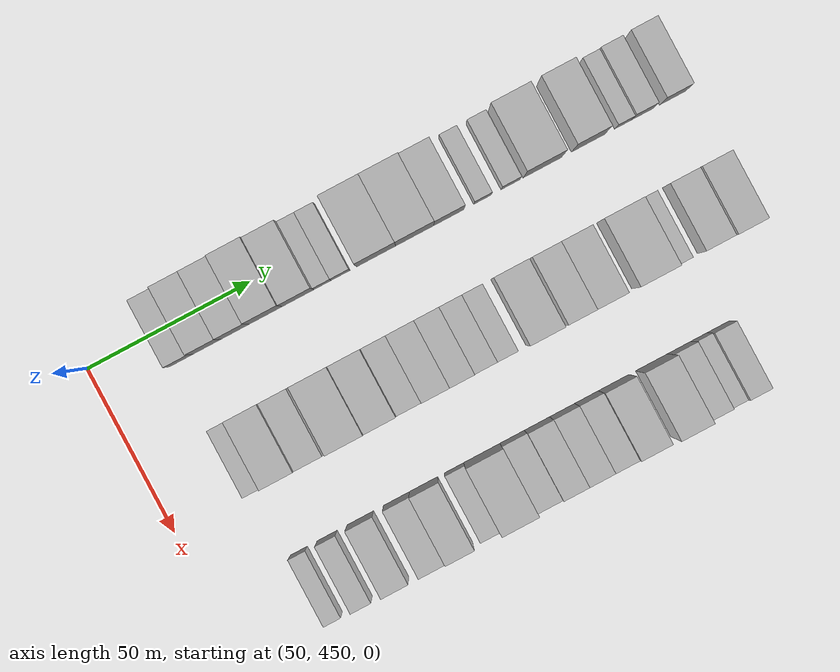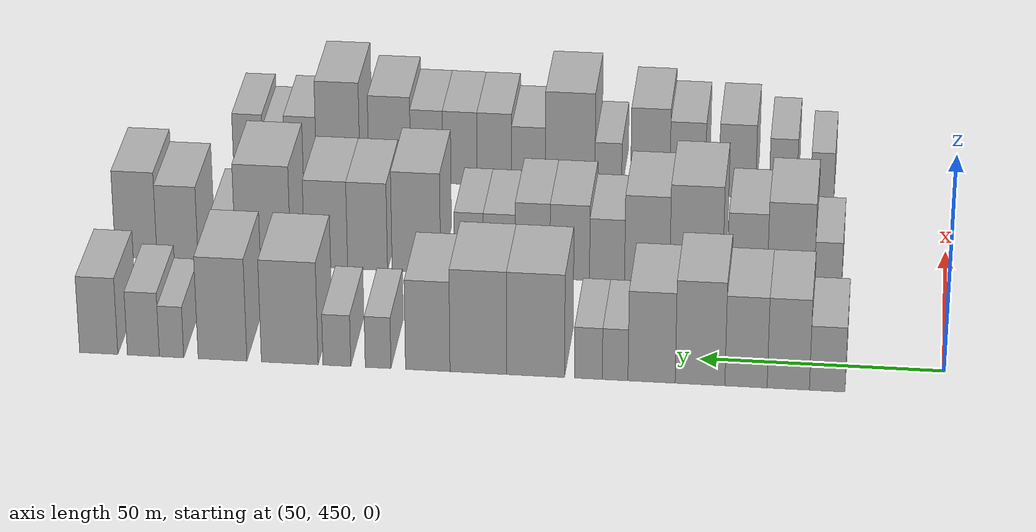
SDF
<sdf version="1.6">
 <world name="default">
  <model name="building_126">
   <static>1</static>
   <pose>50.0000 473.5926 0 0.000000 0.000000 0.000000</pose>
   <link name="link">
    <pose>0 0 7.50 0 0 0</pose>
    <collision name="collision"><geometry><box><size>20.0000 7.2097 15.0000</size></box></geometry></collision>
    <visual name="visual">
     <cast_shadows>0</cast_shadows>
     <geometry><box><size>20.0000 7.2097 15.0000</size></box></geometry>
     <material>
      <script>
       <uri>model://HANNAS_wall/materials/scripts</uri>
       <uri>model://HANNAS_wall/materials/textures</uri>
       <name>vrc/HANNAS_wall</name>
      </script>
     </material>
    </visual>
   </link>
  </model>
  <model name="building_127">
   <static>1</static>
   <pose>50.0000 481.4805 0 0.000000 0.000000 0.000000</pose>
   <link name="link">
    <pose>0 0 10.50 0 0 0</pose>
    <collision name="collision"><geometry><box><size>20.0000 8.5662 21.0000</size></box></geometry></collision>
    <visual name="visual">
     <cast_shadows>0</cast_shadows>
     <geometry><box><size>20.0000 8.5662 21.0000</size></box></geometry>
     <material>
      <script>
       <uri>model://HANNAS_wall/materials/scripts</uri>
       <uri>model://HANNAS_wall/materials/textures</uri>
       <name>vrc/HANNAS_wall</name>
      </script>
     </material>
    </visual>
   </link>
  </model>
  <model name="building_128">
   <static>1</static>
   <pose>50.0000 490.0491 0 0.000000 0.000000 0.000000</pose>
   <link name="link">
    <pose>0 0 10.50 0 0 0</pose>
    <collision name="collision"><geometry><box><size>20.0000 8.5709 21.0000</size></box></geometry></collision>
    <visual name="visual">
     <cast_shadows>0</cast_shadows>
     <geometry><box><size>20.0000 8.5709 21.0000</size></box></geometry>
     <material>
      <script>
       <uri>model://HANNAS_wall/materials/scripts</uri>
       <uri>model://HANNAS_wall/materials/textures</uri>
       <name>vrc/HANNAS_wall</name>
      </script>
     </material>
    </visual>
   </link>
  </model>
  <model name="building_129">
   <static>1</static>
   <pose>50.0000 499.3868 0 0.000000 0.000000 0.000000</pose>
   <link name="link">
    <pose>0 0 12.00 0 0 0</pose>
    <collision name="collision"><geometry><box><size>20.0000 10.1045 24.0000</size></box></geometry></collision>
    <visual name="visual">
     <cast_shadows>0</cast_shadows>
     <geometry><box><size>20.0000 10.1045 24.0000</size></box></geometry>
     <material>
      <script>
       <uri>model://HANNAS_wall/materials/scripts</uri>
       <uri>model://HANNAS_wall/materials/textures</uri>
       <name>vrc/HANNAS_wall</name>
      </script>
     </material>
    </visual>
   </link>
  </model>
  <model name="building_130">
   <static>1</static>
   <pose>50.0000 509.2486 0 0.000000 0.000000 0.000000</pose>
   <link name="link">
    <pose>0 0 10.50 0 0 0</pose>
    <collision name="collision"><geometry><box><size>20.0000 9.6193 21.0000</size></box></geometry></collision>
    <visual name="visual">
     <cast_shadows>0</cast_shadows>
     <geometry><box><size>20.0000 9.6193 21.0000</size></box></geometry>
     <material>
      <script>
       <uri>model://HANNAS_wall/materials/scripts</uri>
       <uri>model://HANNAS_wall/materials/textures</uri>
       <name>vrc/HANNAS_wall</name>
      </script>
     </material>
    </visual>
   </link>
  </model>
  <model name="building_131">
   <static>1</static>
   <pose>50.0000 516.6733 0 0.000000 0.000000 0.000000</pose>
   <link name="link">
    <pose>0 0 6.00 0 0 0</pose>
    <collision name="collision"><geometry><box><size>20.0000 5.2300 12.0000</size></box></geometry></collision>
    <visual name="visual">
     <cast_shadows>0</cast_shadows>
     <geometry><box><size>20.0000 5.2300 12.0000</size></box></geometry>
     <material>
      <script>
       <uri>model://HANNAS_wall/materials/scripts</uri>
       <uri>model://HANNAS_wall/materials/textures</uri>
       <name>vrc/HANNAS_wall</name>
      </script>
     </material>
    </visual>
   </link>
  </model>
  <model name="building_132">
   <static>1</static>
   <pose>50.0000 522.1440 0 0.000000 0.000000 0.000000</pose>
   <link name="link">
    <pose>0 0 6.00 0 0 0</pose>
    <collision name="collision"><geometry><box><size>20.0000 5.7116 12.0000</size></box></geometry></collision>
    <visual name="visual">
     <cast_shadows>0</cast_shadows>
     <geometry><box><size>20.0000 5.7116 12.0000</size></box></geometry>
     <material>
      <script>
       <uri>model://HANNAS_wall/materials/scripts</uri>
       <uri>model://HANNAS_wall/materials/textures</uri>
       <name>vrc/HANNAS_wall</name>
      </script>
     </material>
    </visual>
   </link>
  </model>
  <model name="building_133">
   <static>1</static>
   <pose>50.0000 532.9464 0 0.000000 0.000000 0.000000</pose>
   <link name="link">
    <pose>0 0 12.00 0 0 0</pose>
    <collision name="collision"><geometry><box><size>20.0000 11.8932 24.0000</size></box></geometry></collision>
    <visual name="visual">
     <cast_shadows>0</cast_shadows>
     <geometry><box><size>20.0000 11.8932 24.0000</size></box></geometry>
     <material>
      <script>
       <uri>model://HANNAS_wall/materials/scripts</uri>
       <uri>model://HANNAS_wall/materials/textures</uri>
       <name>vrc/HANNAS_wall</name>
      </script>
     </material>
    </visual>
   </link>
  </model>
  <model name="building_134">
   <static>1</static>
   <pose>50.0000 544.6984 0 0.000000 0.000000 0.000000</pose>
   <link name="link">
    <pose>0 0 12.00 0 0 0</pose>
    <collision name="collision"><geometry><box><size>20.0000 11.6107 24.0000</size></box></geometry></collision>
    <visual name="visual">
     <cast_shadows>0</cast_shadows>
     <geometry><box><size>20.0000 11.6107 24.0000</size></box></geometry>
     <material>
      <script>
       <uri>model://HANNAS_wall/materials/scripts</uri>
       <uri>model://HANNAS_wall/materials/textures</uri>
       <name>vrc/HANNAS_wall</name>
      </script>
     </material>
    </visual>
   </link>
  </model>
  <model name="building_135">
   <static>1</static>
   <pose>50.0000 555.0788 0 0.000000 0.000000 0.000000</pose>
   <link name="link">
    <pose>0 0 10.50 0 0 0</pose>
    <collision name="collision"><geometry><box><size>20.0000 9.1502 21.0000</size></box></geometry></collision>
    <visual name="visual">
     <cast_shadows>0</cast_shadows>
     <geometry><box><size>20.0000 9.1502 21.0000</size></box></geometry>
     <material>
      <script>
       <uri>model://HANNAS_wall/materials/scripts</uri>
       <uri>model://HANNAS_wall/materials/textures</uri>
       <name>vrc/HANNAS_wall</name>
      </script>
     </material>
    </visual>
   </link>
  </model>
  <model name="building_136">
   <static>1</static>
   <pose>50.0000 565.3032 0 0.000000 0.000000 0.000000</pose>
   <link name="link">
    <pose>0 0 6.00 0 0 0</pose>
    <collision name="collision"><geometry><box><size>20.0000 5.2984 12.0000</size></box></geometry></collision>
    <visual name="visual">
     <cast_shadows>0</cast_shadows>
     <geometry><box><size>20.0000 5.2984 12.0000</size></box></geometry>
     <material>
      <script>
       <uri>model://HANNAS_wall/materials/scripts</uri>
       <uri>model://HANNAS_wall/materials/textures</uri>
       <name>vrc/HANNAS_wall</name>
      </script>
     </material>
    </visual>
   </link>
  </model>
  <model name="building_137">
   <static>1</static>
   <pose>50.0000 573.8199 0 0.000000 0.000000 0.000000</pose>
   <link name="link">
    <pose>0 0 6.00 0 0 0</pose>
    <collision name="collision"><geometry><box><size>20.0000 5.7351 12.0000</size></box></geometry></collision>
    <visual name="visual">
     <cast_shadows>0</cast_shadows>
     <geometry><box><size>20.0000 5.7351 12.0000</size></box></geometry>
     <material>
      <script>
       <uri>model://HANNAS_wall/materials/scripts</uri>
       <uri>model://HANNAS_wall/materials/textures</uri>
       <name>vrc/HANNAS_wall</name>
      </script>
     </material>
    </visual>
   </link>
  </model>
  <model name="building_138">
   <static>1</static>
   <pose>50.0000 583.5633 0 0.000000 0.000000 0.000000</pose>
   <link name="link">
    <pose>0 0 12.00 0 0 0</pose>
    <collision name="collision"><geometry><box><size>20.0000 11.7516 24.0000</size></box></geometry></collision>
    <visual name="visual">
     <cast_shadows>0</cast_shadows>
     <geometry><box><size>20.0000 11.7516 24.0000</size></box></geometry>
     <material>
      <script>
       <uri>model://HANNAS_wall/materials/scripts</uri>
       <uri>model://HANNAS_wall/materials/textures</uri>
       <name>vrc/HANNAS_wall</name>
      </script>
     </material>
    </visual>
   </link>
  </model>
  <model name="building_139">
   <static>1</static>
   <pose>50.0000 597.5009 0 0.000000 0.000000 0.000000</pose>
   <link name="link">
    <pose>0 0 12.00 0 0 0</pose>
    <collision name="collision"><geometry><box><size>20.0000 10.1237 24.0000</size></box></geometry></collision>
    <visual name="visual">
     <cast_shadows>0</cast_shadows>
     <geometry><box><size>20.0000 10.1237 24.0000</size></box></geometry>
     <material>
      <script>
       <uri>model://HANNAS_wall/materials/scripts</uri>
       <uri>model://HANNAS_wall/materials/textures</uri>
       <name>vrc/HANNAS_wall</name>
      </script>
     </material>
    </visual>
   </link>
  </model>
  <model name="building_140">
   <static>1</static>
   <pose>50.0000 608.1023 0 0.000000 0.000000 0.000000</pose>
   <link name="link">
    <pose>0 0 6.00 0 0 0</pose>
    <collision name="collision"><geometry><box><size>20.0000 5.0792 12.0000</size></box></geometry></collision>
    <visual name="visual">
     <cast_shadows>0</cast_shadows>
     <geometry><box><size>20.0000 5.0792 12.0000</size></box></geometry>
     <material>
      <script>
       <uri>model://HANNAS_wall/materials/scripts</uri>
       <uri>model://HANNAS_wall/materials/textures</uri>
       <name>vrc/HANNAS_wall</name>
      </script>
     </material>
    </visual>
   </link>
  </model>
  <model name="building_141">
   <static>1</static>
   <pose>50.0000 613.9682 0 0.000000 0.000000 0.000000</pose>
   <link name="link">
    <pose>0 0 7.50 0 0 0</pose>
    <collision name="collision"><geometry><box><size>20.0000 6.6525 15.0000</size></box></geometry></collision>
    <visual name="visual">
     <cast_shadows>0</cast_shadows>
     <geometry><box><size>20.0000 6.6525 15.0000</size></box></geometry>
     <material>
      <script>
       <uri>model://HANNAS_wall/materials/scripts</uri>
       <uri>model://HANNAS_wall/materials/textures</uri>
       <name>vrc/HANNAS_wall</name>
      </script>
     </material>
    </visual>
   </link>
  </model>
  <model name="building_142">
   <static>1</static>
   <pose>50.0000 623.2729 0 0.000000 0.000000 0.000000</pose>
   <link name="link">
    <pose>0 0 9.00 0 0 0</pose>
    <collision name="collision"><geometry><box><size>20.0000 7.9570 18.0000</size></box></geometry></collision>
    <visual name="visual">
     <cast_shadows>0</cast_shadows>
     <geometry><box><size>20.0000 7.9570 18.0000</size></box></geometry>
     <material>
      <script>
       <uri>model://HANNAS_wall/materials/scripts</uri>
       <uri>model://HANNAS_wall/materials/textures</uri>
       <name>vrc/HANNAS_wall</name>
      </script>
     </material>
    </visual>
   </link>
  </model>
  <model name="building_247">
   <static>1</static>
   <pose>90.0000 474.7799 0 0.000000 0.000000 0.000000</pose>
   <link name="link">
    <pose>0 0 6.00 0 0 0</pose>
    <collision name="collision"><geometry><box><size>20.0000 5.7946 12.0000</size></box></geometry></collision>
    <visual name="visual">
     <cast_shadows>0</cast_shadows>
     <geometry><box><size>20.0000 5.7946 12.0000</size></box></geometry>
     <material>
      <script>
       <uri>model://HANNAS_wall/materials/scripts</uri>
       <uri>model://HANNAS_wall/materials/textures</uri>
       <name>vrc/HANNAS_wall</name>
      </script>
     </material>
    </visual>
   </link>
  </model>
  <model name="building_248">
   <static>1</static>
   <pose>90.0000 482.6432 0 0.000000 0.000000 0.000000</pose>
   <link name="link">
    <pose>0 0 10.50 0 0 0</pose>
    <collision name="collision"><geometry><box><size>20.0000 9.9320 21.0000</size></box></geometry></collision>
    <visual name="visual">
     <cast_shadows>0</cast_shadows>
     <geometry><box><size>20.0000 9.9320 21.0000</size></box></geometry>
     <material>
      <script>
       <uri>model://HANNAS_wall/materials/scripts</uri>
       <uri>model://HANNAS_wall/materials/textures</uri>
       <name>vrc/HANNAS_wall</name>
      </script>
     </material>
    </visual>
   </link>
  </model>
  <model name="building_249">
   <static>1</static>
   <pose>90.0000 491.8241 0 0.000000 0.000000 0.000000</pose>
   <link name="link">
    <pose>0 0 9.00 0 0 0</pose>
    <collision name="collision"><geometry><box><size>20.0000 8.4297 18.0000</size></box></geometry></collision>
    <visual name="visual">
     <cast_shadows>0</cast_shadows>
     <geometry><box><size>20.0000 8.4297 18.0000</size></box></geometry>
     <material>
      <script>
       <uri>model://HANNAS_wall/materials/scripts</uri>
       <uri>model://HANNAS_wall/materials/textures</uri>
       <name>vrc/HANNAS_wall</name>
      </script>
     </material>
    </visual>
   </link>
  </model>
  <model name="building_250">
   <static>1</static>
   <pose>90.0000 502.6548 0 0.000000 0.000000 0.000000</pose>
   <link name="link">
    <pose>0 0 12.00 0 0 0</pose>
    <collision name="collision"><geometry><box><size>20.0000 11.2319 24.0000</size></box></geometry></collision>
    <visual name="visual">
     <cast_shadows>0</cast_shadows>
     <geometry><box><size>20.0000 11.2319 24.0000</size></box></geometry>
     <material>
      <script>
       <uri>model://HANNAS_wall/materials/scripts</uri>
       <uri>model://HANNAS_wall/materials/textures</uri>
       <name>vrc/HANNAS_wall</name>
      </script>
     </material>
    </visual>
   </link>
  </model>
  <model name="building_251">
   <static>1</static>
   <pose>90.0000 513.0584 0 0.000000 0.000000 0.000000</pose>
   <link name="link">
    <pose>0 0 10.50 0 0 0</pose>
    <collision name="collision"><geometry><box><size>20.0000 9.5752 21.0000</size></box></geometry></collision>
    <visual name="visual">
     <cast_shadows>0</cast_shadows>
     <geometry><box><size>20.0000 9.5752 21.0000</size></box></geometry>
     <material>
      <script>
       <uri>model://HANNAS_wall/materials/scripts</uri>
       <uri>model://HANNAS_wall/materials/textures</uri>
       <name>vrc/HANNAS_wall</name>
      </script>
     </material>
    </visual>
   </link>
  </model>
  <model name="building_252">
   <static>1</static>
   <pose>90.0000 521.5767 0 0.000000 0.000000 0.000000</pose>
   <link name="link">
    <pose>0 0 7.50 0 0 0</pose>
    <collision name="collision"><geometry><box><size>20.0000 7.4614 15.0000</size></box></geometry></collision>
    <visual name="visual">
     <cast_shadows>0</cast_shadows>
     <geometry><box><size>20.0000 7.4614 15.0000</size></box></geometry>
     <material>
      <script>
       <uri>model://HANNAS_wall/materials/scripts</uri>
       <uri>model://HANNAS_wall/materials/textures</uri>
       <name>vrc/HANNAS_wall</name>
      </script>
     </material>
    </visual>
   </link>
  </model>
  <model name="building_253">
   <static>1</static>
   <pose>90.0000 529.5255 0 0.000000 0.000000 0.000000</pose>
   <link name="link">
    <pose>0 0 9.00 0 0 0</pose>
    <collision name="collision"><geometry><box><size>20.0000 8.4363 18.0000</size></box></geometry></collision>
    <visual name="visual">
     <cast_shadows>0</cast_shadows>
     <geometry><box><size>20.0000 8.4363 18.0000</size></box></geometry>
     <material>
      <script>
       <uri>model://HANNAS_wall/materials/scripts</uri>
       <uri>model://HANNAS_wall/materials/textures</uri>
       <name>vrc/HANNAS_wall</name>
      </script>
     </material>
    </visual>
   </link>
  </model>
  <model name="building_254">
   <static>1</static>
   <pose>90.0000 537.4554 0 0.000000 0.000000 0.000000</pose>
   <link name="link">
    <pose>0 0 9.00 0 0 0</pose>
    <collision name="collision"><geometry><box><size>20.0000 7.4234 18.0000</size></box></geometry></collision>
    <visual name="visual">
     <cast_shadows>0</cast_shadows>
     <geometry><box><size>20.0000 7.4234 18.0000</size></box></geometry>
     <material>
      <script>
       <uri>model://HANNAS_wall/materials/scripts</uri>
       <uri>model://HANNAS_wall/materials/textures</uri>
       <name>vrc/HANNAS_wall</name>
      </script>
     </material>
    </visual>
   </link>
  </model>
  <model name="building_255">
   <static>1</static>
   <pose>90.0000 544.5728 0 0.000000 0.000000 0.000000</pose>
   <link name="link">
    <pose>0 0 7.50 0 0 0</pose>
    <collision name="collision"><geometry><box><size>20.0000 6.8114 15.0000</size></box></geometry></collision>
    <visual name="visual">
     <cast_shadows>0</cast_shadows>
     <geometry><box><size>20.0000 6.8114 15.0000</size></box></geometry>
     <material>
      <script>
       <uri>model://HANNAS_wall/materials/scripts</uri>
       <uri>model://HANNAS_wall/materials/textures</uri>
       <name>vrc/HANNAS_wall</name>
      </script>
     </material>
    </visual>
   </link>
  </model>
  <model name="building_256">
   <static>1</static>
   <pose>90.0000 551.0683 0 0.000000 0.000000 0.000000</pose>
   <link name="link">
    <pose>0 0 7.50 0 0 0</pose>
    <collision name="collision"><geometry><box><size>20.0000 6.1797 15.0000</size></box></geometry></collision>
    <visual name="visual">
     <cast_shadows>0</cast_shadows>
     <geometry><box><size>20.0000 6.1797 15.0000</size></box></geometry>
     <material>
      <script>
       <uri>model://HANNAS_wall/materials/scripts</uri>
       <uri>model://HANNAS_wall/materials/textures</uri>
       <name>vrc/HANNAS_wall</name>
      </script>
     </material>
    </visual>
   </link>
  </model>
  <model name="building_257">
   <static>1</static>
   <pose>90.0000 562.3625 0 0.000000 0.000000 0.000000</pose>
   <link name="link">
    <pose>0 0 12.00 0 0 0</pose>
    <collision name="collision"><geometry><box><size>20.0000 10.4087 24.0000</size></box></geometry></collision>
    <visual name="visual">
     <cast_shadows>0</cast_shadows>
     <geometry><box><size>20.0000 10.4087 24.0000</size></box></geometry>
     <material>
      <script>
       <uri>model://HANNAS_wall/materials/scripts</uri>
       <uri>model://HANNAS_wall/materials/textures</uri>
       <name>vrc/HANNAS_wall</name>
      </script>
     </material>
    </visual>
   </link>
  </model>
  <model name="building_258">
   <static>1</static>
   <pose>90.0000 572.8558 0 0.000000 0.000000 0.000000</pose>
   <link name="link">
    <pose>0 0 10.50 0 0 0</pose>
    <collision name="collision"><geometry><box><size>20.0000 8.5778 21.0000</size></box></geometry></collision>
    <visual name="visual">
     <cast_shadows>0</cast_shadows>
     <geometry><box><size>20.0000 8.5778 21.0000</size></box></geometry>
     <material>
      <script>
       <uri>model://HANNAS_wall/materials/scripts</uri>
       <uri>model://HANNAS_wall/materials/textures</uri>
       <name>vrc/HANNAS_wall</name>
      </script>
     </material>
    </visual>
   </link>
  </model>
  <model name="building_259">
   <static>1</static>
   <pose>90.0000 581.7766 0 0.000000 0.000000 0.000000</pose>
   <link name="link">
    <pose>0 0 10.50 0 0 0</pose>
    <collision name="collision"><geometry><box><size>20.0000 9.2639 21.0000</size></box></geometry></collision>
    <visual name="visual">
     <cast_shadows>0</cast_shadows>
     <geometry><box><size>20.0000 9.2639 21.0000</size></box></geometry>
     <material>
      <script>
       <uri>model://HANNAS_wall/materials/scripts</uri>
       <uri>model://HANNAS_wall/materials/textures</uri>
       <name>vrc/HANNAS_wall</name>
      </script>
     </material>
    </visual>
   </link>
  </model>
  <model name="building_260">
   <static>1</static>
   <pose>90.0000 595.3792 0 0.000000 0.000000 0.000000</pose>
   <link name="link">
    <pose>0 0 12.00 0 0 0</pose>
    <collision name="collision"><geometry><box><size>20.0000 11.9413 24.0000</size></box></geometry></collision>
    <visual name="visual">
     <cast_shadows>0</cast_shadows>
     <geometry><box><size>20.0000 11.9413 24.0000</size></box></geometry>
     <material>
      <script>
       <uri>model://HANNAS_wall/materials/scripts</uri>
       <uri>model://HANNAS_wall/materials/textures</uri>
       <name>vrc/HANNAS_wall</name>
      </script>
     </material>
    </visual>
   </link>
  </model>
  <model name="building_261">
   <static>1</static>
   <pose>90.0000 603.9198 0 0.000000 0.000000 0.000000</pose>
   <link name="link">
    <pose>0 0 6.00 0 0 0</pose>
    <collision name="collision"><geometry><box><size>20.0000 5.1398 12.0000</size></box></geometry></collision>
    <visual name="visual">
     <cast_shadows>0</cast_shadows>
     <geometry><box><size>20.0000 5.1398 12.0000</size></box></geometry>
     <material>
      <script>
       <uri>model://HANNAS_wall/materials/scripts</uri>
       <uri>model://HANNAS_wall/materials/textures</uri>
       <name>vrc/HANNAS_wall</name>
      </script>
     </material>
    </visual>
   </link>
  </model>
  <model name="building_262">
   <static>1</static>
   <pose>90.0000 613.9476 0 0.000000 0.000000 0.000000</pose>
   <link name="link">
    <pose>0 0 9.00 0 0 0</pose>
    <collision name="collision"><geometry><box><size>20.0000 8.9159 18.0000</size></box></geometry></collision>
    <visual name="visual">
     <cast_shadows>0</cast_shadows>
     <geometry><box><size>20.0000 8.9159 18.0000</size></box></geometry>
     <material>
      <script>
       <uri>model://HANNAS_wall/materials/scripts</uri>
       <uri>model://HANNAS_wall/materials/textures</uri>
       <name>vrc/HANNAS_wall</name>
      </script>
     </material>
    </visual>
   </link>
  </model>
  <model name="building_263">
   <static>1</static>
   <pose>90.0000 622.9202 0 0.000000 0.000000 0.000000</pose>
   <link name="link">
    <pose>0 0 10.50 0 0 0</pose>
    <collision name="collision"><geometry><box><size>20.0000 9.0294 21.0000</size></box></geometry></collision>
    <visual name="visual">
     <cast_shadows>0</cast_shadows>
     <geometry><box><size>20.0000 9.0294 21.0000</size></box></geometry>
     <material>
      <script>
       <uri>model://HANNAS_wall/materials/scripts</uri>
       <uri>model://HANNAS_wall/materials/textures</uri>
       <name>vrc/HANNAS_wall</name>
      </script>
     </material>
    </visual>
   </link>
  </model>
  <model name="building_382">
   <static>1</static>
   <pose>130.0000 477.3054 0 0.000000 0.000000 0.000000</pose>
   <link name="link">
    <pose>0 0 6.00 0 0 0</pose>
    <collision name="collision"><geometry><box><size>20.0000 5.1617 12.0000</size></box></geometry></collision>
    <visual name="visual">
     <cast_shadows>0</cast_shadows>
     <geometry><box><size>20.0000 5.1617 12.0000</size></box></geometry>
     <material>
      <script>
       <uri>model://HANNAS_wall/materials/scripts</uri>
       <uri>model://HANNAS_wall/materials/textures</uri>
       <name>vrc/HANNAS_wall</name>
      </script>
     </material>
    </visual>
   </link>
  </model>
  <model name="building_383">
   <static>1</static>
   <pose>130.0000 485.9417 0 0.000000 0.000000 0.000000</pose>
   <link name="link">
    <pose>0 0 7.50 0 0 0</pose>
    <collision name="collision"><geometry><box><size>20.0000 6.1109 15.0000</size></box></geometry></collision>
    <visual name="visual">
     <cast_shadows>0</cast_shadows>
     <geometry><box><size>20.0000 6.1109 15.0000</size></box></geometry>
     <material>
      <script>
       <uri>model://HANNAS_wall/materials/scripts</uri>
       <uri>model://HANNAS_wall/materials/textures</uri>
       <name>vrc/HANNAS_wall</name>
      </script>
     </material>
    </visual>
   </link>
  </model>
  <model name="building_384">
   <static>1</static>
   <pose>130.0000 496.0381 0 0.000000 0.000000 0.000000</pose>
   <link name="link">
    <pose>0 0 9.00 0 0 0</pose>
    <collision name="collision"><geometry><box><size>20.0000 8.0819 18.0000</size></box></geometry></collision>
    <visual name="visual">
     <cast_shadows>0</cast_shadows>
     <geometry><box><size>20.0000 8.0819 18.0000</size></box></geometry>
     <material>
      <script>
       <uri>model://HANNAS_wall/materials/scripts</uri>
       <uri>model://HANNAS_wall/materials/textures</uri>
       <name>vrc/HANNAS_wall</name>
      </script>
     </material>
    </visual>
   </link>
  </model>
  <model name="building_385">
   <static>1</static>
   <pose>130.0000 507.0114 0 0.000000 0.000000 0.000000</pose>
   <link name="link">
    <pose>0 0 9.00 0 0 0</pose>
    <collision name="collision"><geometry><box><size>20.0000 7.8647 18.0000</size></box></geometry></collision>
    <visual name="visual">
     <cast_shadows>0</cast_shadows>
     <geometry><box><size>20.0000 7.8647 18.0000</size></box></geometry>
     <material>
      <script>
       <uri>model://HANNAS_wall/materials/scripts</uri>
       <uri>model://HANNAS_wall/materials/textures</uri>
       <name>vrc/HANNAS_wall</name>
      </script>
     </material>
    </visual>
   </link>
  </model>
  <model name="building_386">
   <static>1</static>
   <pose>130.0000 515.2641 0 0.000000 0.000000 0.000000</pose>
   <link name="link">
    <pose>0 0 10.50 0 0 0</pose>
    <collision name="collision"><geometry><box><size>20.0000 8.6406 21.0000</size></box></geometry></collision>
    <visual name="visual">
     <cast_shadows>0</cast_shadows>
     <geometry><box><size>20.0000 8.6406 21.0000</size></box></geometry>
     <material>
      <script>
       <uri>model://HANNAS_wall/materials/scripts</uri>
       <uri>model://HANNAS_wall/materials/textures</uri>
       <name>vrc/HANNAS_wall</name>
      </script>
     </material>
    </visual>
   </link>
  </model>
  <model name="building_387">
   <static>1</static>
   <pose>130.0000 524.5528 0 0.000000 0.000000 0.000000</pose>
   <link name="link">
    <pose>0 0 6.00 0 0 0</pose>
    <collision name="collision"><geometry><box><size>20.0000 5.9367 12.0000</size></box></geometry></collision>
    <visual name="visual">
     <cast_shadows>0</cast_shadows>
     <geometry><box><size>20.0000 5.9367 12.0000</size></box></geometry>
     <material>
      <script>
       <uri>model://HANNAS_wall/materials/scripts</uri>
       <uri>model://HANNAS_wall/materials/textures</uri>
       <name>vrc/HANNAS_wall</name>
      </script>
     </material>
    </visual>
   </link>
  </model>
  <model name="building_388">
   <static>1</static>
   <pose>130.0000 533.0314 0 0.000000 0.000000 0.000000</pose>
   <link name="link">
    <pose>0 0 12.00 0 0 0</pose>
    <collision name="collision"><geometry><box><size>20.0000 11.0206 24.0000</size></box></geometry></collision>
    <visual name="visual">
     <cast_shadows>0</cast_shadows>
     <geometry><box><size>20.0000 11.0206 24.0000</size></box></geometry>
     <material>
      <script>
       <uri>model://HANNAS_wall/materials/scripts</uri>
       <uri>model://HANNAS_wall/materials/textures</uri>
       <name>vrc/HANNAS_wall</name>
      </script>
     </material>
    </visual>
   </link>
  </model>
  <model name="building_389">
   <static>1</static>
   <pose>130.0000 542.2891 0 0.000000 0.000000 0.000000</pose>
   <link name="link">
    <pose>0 0 7.50 0 0 0</pose>
    <collision name="collision"><geometry><box><size>20.0000 7.4950 15.0000</size></box></geometry></collision>
    <visual name="visual">
     <cast_shadows>0</cast_shadows>
     <geometry><box><size>20.0000 7.4950 15.0000</size></box></geometry>
     <material>
      <script>
       <uri>model://HANNAS_wall/materials/scripts</uri>
       <uri>model://HANNAS_wall/materials/textures</uri>
       <name>vrc/HANNAS_wall</name>
      </script>
     </material>
    </visual>
   </link>
  </model>
  <model name="building_390">
   <static>1</static>
   <pose>130.0000 549.8821 0 0.000000 0.000000 0.000000</pose>
   <link name="link">
    <pose>0 0 9.00 0 0 0</pose>
    <collision name="collision"><geometry><box><size>20.0000 7.6910 18.0000</size></box></geometry></collision>
    <visual name="visual">
     <cast_shadows>0</cast_shadows>
     <geometry><box><size>20.0000 7.6910 18.0000</size></box></geometry>
     <material>
      <script>
       <uri>model://HANNAS_wall/materials/scripts</uri>
       <uri>model://HANNAS_wall/materials/textures</uri>
       <name>vrc/HANNAS_wall</name>
      </script>
     </material>
    </visual>
   </link>
  </model>
  <model name="building_391">
   <static>1</static>
   <pose>130.0000 557.5513 0 0.000000 0.000000 0.000000</pose>
   <link name="link">
    <pose>0 0 9.00 0 0 0</pose>
    <collision name="collision"><geometry><box><size>20.0000 7.6474 18.0000</size></box></geometry></collision>
    <visual name="visual">
     <cast_shadows>0</cast_shadows>
     <geometry><box><size>20.0000 7.6474 18.0000</size></box></geometry>
     <material>
      <script>
       <uri>model://HANNAS_wall/materials/scripts</uri>
       <uri>model://HANNAS_wall/materials/textures</uri>
       <name>vrc/HANNAS_wall</name>
      </script>
     </material>
    </visual>
   </link>
  </model>
  <model name="building_392">
   <static>1</static>
   <pose>130.0000 564.9790 0 0.000000 0.000000 0.000000</pose>
   <link name="link">
    <pose>0 0 9.00 0 0 0</pose>
    <collision name="collision"><geometry><box><size>20.0000 7.2078 18.0000</size></box></geometry></collision>
    <visual name="visual">
     <cast_shadows>0</cast_shadows>
     <geometry><box><size>20.0000 7.2078 18.0000</size></box></geometry>
     <material>
      <script>
       <uri>model://HANNAS_wall/materials/scripts</uri>
       <uri>model://HANNAS_wall/materials/textures</uri>
       <name>vrc/HANNAS_wall</name>
      </script>
     </material>
    </visual>
   </link>
  </model>
  <model name="building_393">
   <static>1</static>
   <pose>130.0000 573.2520 0 0.000000 0.000000 0.000000</pose>
   <link name="link">
    <pose>0 0 10.50 0 0 0</pose>
    <collision name="collision"><geometry><box><size>20.0000 9.3383 21.0000</size></box></geometry></collision>
    <visual name="visual">
     <cast_shadows>0</cast_shadows>
     <geometry><box><size>20.0000 9.3383 21.0000</size></box></geometry>
     <material>
      <script>
       <uri>model://HANNAS_wall/materials/scripts</uri>
       <uri>model://HANNAS_wall/materials/textures</uri>
       <name>vrc/HANNAS_wall</name>
      </script>
     </material>
    </visual>
   </link>
  </model>
  <model name="building_394">
   <static>1</static>
   <pose>130.0000 584.8050 0 0.000000 0.000000 0.000000</pose>
   <link name="link">
    <pose>0 0 12.00 0 0 0</pose>
    <collision name="collision"><geometry><box><size>20.0000 9.7677 24.0000</size></box></geometry></collision>
    <visual name="visual">
     <cast_shadows>0</cast_shadows>
     <geometry><box><size>20.0000 9.7677 24.0000</size></box></geometry>
     <material>
      <script>
       <uri>model://HANNAS_wall/materials/scripts</uri>
       <uri>model://HANNAS_wall/materials/textures</uri>
       <name>vrc/HANNAS_wall</name>
      </script>
     </material>
    </visual>
   </link>
  </model>
  <model name="building_395">
   <static>1</static>
   <pose>130.0000 593.2532 0 0.000000 0.000000 0.000000</pose>
   <link name="link">
    <pose>0 0 7.50 0 0 0</pose>
    <collision name="collision"><geometry><box><size>20.0000 7.1286 15.0000</size></box></geometry></collision>
    <visual name="visual">
     <cast_shadows>0</cast_shadows>
     <geometry><box><size>20.0000 7.1286 15.0000</size></box></geometry>
     <material>
      <script>
       <uri>model://HANNAS_wall/materials/scripts</uri>
       <uri>model://HANNAS_wall/materials/textures</uri>
       <name>vrc/HANNAS_wall</name>
      </script>
     </material>
    </visual>
   </link>
  </model>
  <model name="building_396">
   <static>1</static>
   <pose>130.0000 599.2206 0 0.000000 0.000000 0.000000</pose>
   <link name="link">
    <pose>0 0 6.00 0 0 0</pose>
    <collision name="collision"><geometry><box><size>20.0000 4.8062 12.0000</size></box></geometry></collision>
    <visual name="visual">
     <cast_shadows>0</cast_shadows>
     <geometry><box><size>20.0000 4.8062 12.0000</size></box></geometry>
     <material>
      <script>
       <uri>model://HANNAS_wall/materials/scripts</uri>
       <uri>model://HANNAS_wall/materials/textures</uri>
       <name>vrc/HANNAS_wall</name>
      </script>
     </material>
    </visual>
   </link>
  </model>
  <model name="building_397">
   <static>1</static>
   <pose>130.0000 604.9699 0 0.000000 0.000000 0.000000</pose>
   <link name="link">
    <pose>0 0 7.50 0 0 0</pose>
    <collision name="collision"><geometry><box><size>20.0000 6.6923 15.0000</size></box></geometry></collision>
    <visual name="visual">
     <cast_shadows>0</cast_shadows>
     <geometry><box><size>20.0000 6.6923 15.0000</size></box></geometry>
     <material>
      <script>
       <uri>model://HANNAS_wall/materials/scripts</uri>
       <uri>model://HANNAS_wall/materials/textures</uri>
       <name>vrc/HANNAS_wall</name>
      </script>
     </material>
    </visual>
   </link>
  </model>
 </world>
</sdf>
